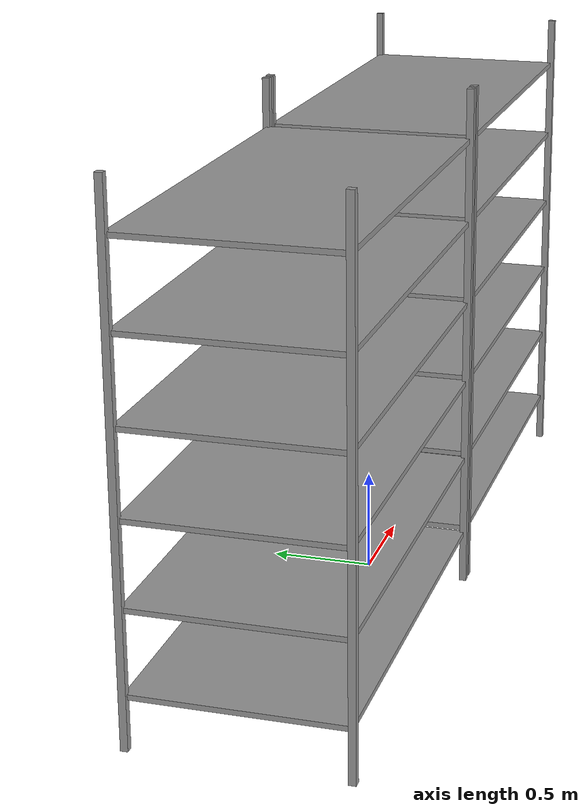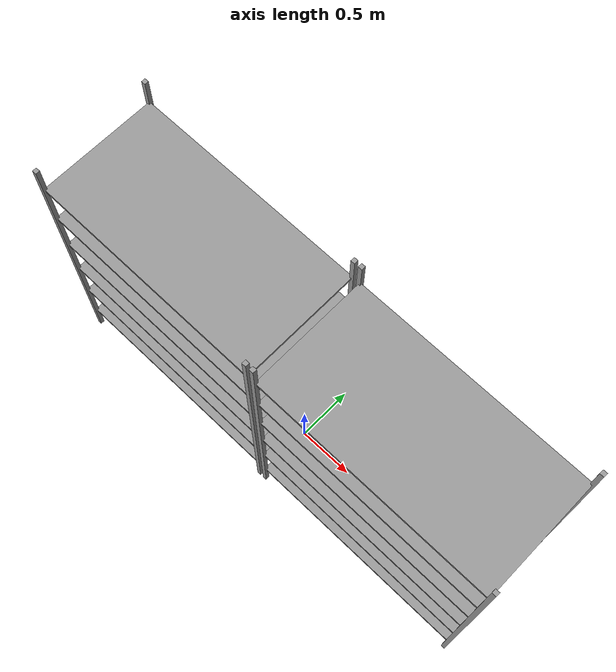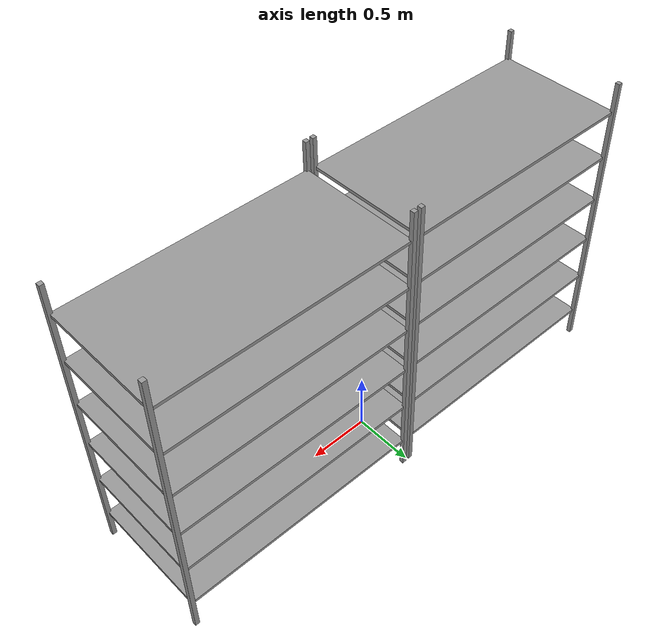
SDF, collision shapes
<sdf version="1.6">
 <model name="shelves">
  <model name="shelf">
   <link name="link_1">
    <inertial>
     <mass>1</mass>
     <inertia>
      <ixx>0.166667</ixx>
      <ixy>0</ixy>
      <ixz>0</ixz>
      <iyy>0.166667</iyy>
      <iyz>0</iyz>
      <izz>0.166667</izz>
     </inertia>
    </inertial>
    <visual name="ModelPreview_2::link_1::visual_6">
     <pose>1 0.5 0 0 -0 0</pose>
     <geometry><mesh><uri>model://shelf/model/2-5mDirek.stl</uri><scale>0.001 0.001 0.001</scale></mesh></geometry>
     <material>
      <lighting>1</lighting>
      <script><uri>file://media/materials/scripts/gazebo.material</uri><name>Gazebo/Grey</name></script>
      <shader type="vertex"><normal_map>__default__</normal_map></shader>
      <ambient>0.3 0.3 0.3 1</ambient>
      <diffuse>0.7 0.7 0.7 1</diffuse>
      <specular>0.01 0.01 0.01 1</specular>
      <emissive>0 0 0 1</emissive>
     </material>
    </visual>
    <visual name="ModelPreview_2::link_1::visual_7">
     <pose>-1 0.5 0 0 -0 0</pose>
     <geometry><mesh><uri>model://shelf/model/2-5mDirek.stl</uri><scale>0.001 0.001 0.001</scale></mesh></geometry>
     <material>
      <lighting>1</lighting>
      <script><uri>file://media/materials/scripts/gazebo.material</uri><name>Gazebo/Grey</name></script>
      <shader type="vertex"><normal_map>__default__</normal_map></shader>
      <ambient>0.3 0.3 0.3 1</ambient>
      <diffuse>0.7 0.7 0.7 1</diffuse>
      <specular>0.01 0.01 0.01 1</specular>
      <emissive>0 0 0 1</emissive>
     </material>
    </visual>
    <visual name="ModelPreview_2::link_1::visual_4">
     <pose>0 0 1.85 0 -0 0</pose>
     <geometry><box><size>2 1 0.025</size></box></geometry>
     <material>
      <lighting>1</lighting>
      <script><uri>file://media/materials/scripts/gazebo.material</uri><name>Gazebo/WoodFloor</name></script>
      <shader type="vertex"><normal_map>__default__</normal_map></shader>
      <ambient>0.3 0.3 0.3 1</ambient>
      <diffuse>0.7 0.7 0.7 1</diffuse>
      <specular>0.01 0.01 0.01 1</specular>
      <emissive>0 0 0 1</emissive>
     </material>
    </visual>
    <visual name="ModelPreview_2::link_1::visual_5">
     <pose>0 0 2.25 0 -0 0</pose>
     <geometry><box><size>2 1 0.025</size></box></geometry>
     <material>
      <lighting>1</lighting>
      <script><uri>file://media/materials/scripts/gazebo.material</uri><name>Gazebo/WoodFloor</name></script>
      <shader type="vertex"><normal_map>__default__</normal_map></shader>
      <ambient>0.3 0.3 0.3 1</ambient>
      <diffuse>0.7 0.7 0.7 1</diffuse>
      <specular>0.01 0.01 0.01 1</specular>
      <emissive>0 0 0 1</emissive>
     </material>
    </visual>
    <visual name="ModelPreview_2::link_1::visual_3">
     <pose>0 0 1.45 0 -0 0</pose>
     <geometry><box><size>2 1 0.025</size></box></geometry>
     <material>
      <lighting>1</lighting>
      <script><uri>file://media/materials/scripts/gazebo.material</uri><name>Gazebo/WoodFloor</name></script>
      <shader type="vertex"><normal_map>__default__</normal_map></shader>
      <ambient>0.3 0.3 0.3 1</ambient>
      <diffuse>0.7 0.7 0.7 1</diffuse>
      <specular>0.01 0.01 0.01 1</specular>
      <emissive>0 0 0 1</emissive>
     </material>
    </visual>
    <visual name="ModelPreview_2::link_1::visual_1">
     <pose>0 0 0.65 0 -0 0</pose>
     <geometry><box><size>2 1 0.025</size></box></geometry>
     <material>
      <lighting>1</lighting>
      <script><uri>file://media/materials/scripts/gazebo.material</uri><name>Gazebo/WoodFloor</name></script>
      <shader type="vertex"><normal_map>__default__</normal_map></shader>
      <ambient>0.3 0.3 0.3 1</ambient>
      <diffuse>0.7 0.7 0.7 1</diffuse>
      <specular>0.01 0.01 0.01 1</specular>
      <emissive>0 0 0 1</emissive>
     </material>
    </visual>
    <visual name="visual">
     <pose>0 0 0.25 0 -0 0</pose>
     <geometry><box><size>2 1 0.025</size></box></geometry>
     <material>
      <lighting>1</lighting>
      <script><uri>file://media/materials/scripts/gazebo.material</uri><name>Gazebo/WoodFloor</name></script>
      <shader type="vertex"><normal_map>__default__</normal_map></shader>
      <ambient>0.3 0.3 0.3 1</ambient>
      <diffuse>0.7 0.7 0.7 1</diffuse>
      <specular>0.01 0.01 0.01 1</specular>
      <emissive>0 0 0 1</emissive>
     </material>
    </visual>
    <visual name="ModelPreview_2::link_1::visual_2">
     <pose>0 0 1.05 0 -0 0</pose>
     <geometry><box><size>2 1 0.025</size></box></geometry>
     <material>
      <lighting>1</lighting>
      <script><uri>file://media/materials/scripts/gazebo.material</uri><name>Gazebo/WoodFloor</name></script>
      <shader type="vertex"><normal_map>__default__</normal_map></shader>
      <ambient>0.3 0.3 0.3 1</ambient>
      <diffuse>0.7 0.7 0.7 1</diffuse>
      <specular>0.01 0.01 0.01 1</specular>
      <emissive>0 0 0 1</emissive>
     </material>
    </visual>
    <visual name="ModelPreview_2::link_1::visual_8">
     <pose>1 -0.5 0 0 -0 0</pose>
     <geometry><mesh><uri>model://shelf/model/2-5mDirek.stl</uri><scale>0.001 0.001 0.001</scale></mesh></geometry>
     <material>
      <lighting>1</lighting>
      <script><uri>file://media/materials/scripts/gazebo.material</uri><name>Gazebo/Grey</name></script>
      <shader type="vertex"><normal_map>__default__</normal_map></shader>
      <ambient>0.3 0.3 0.3 1</ambient>
      <diffuse>0.7 0.7 0.7 1</diffuse>
      <specular>0.01 0.01 0.01 1</specular>
      <emissive>0 0 0 1</emissive>
     </material>
    </visual>
    <visual name="ModelPreview_2::link_1::visual_9">
     <pose>-1 -0.5 0 0 -0 0</pose>
     <geometry><mesh><uri>model://shelf/model/2-5mDirek.stl</uri><scale>0.001 0.001 0.001</scale></mesh></geometry>
     <material>
      <lighting>1</lighting>
      <script><uri>file://media/materials/scripts/gazebo.material</uri><name>Gazebo/Grey</name></script>
      <shader type="vertex"><normal_map>__default__</normal_map></shader>
      <ambient>0.3 0.3 0.3 1</ambient>
      <diffuse>0.7 0.7 0.7 1</diffuse>
      <specular>0.01 0.01 0.01 1</specular>
      <emissive>0 0 0 1</emissive>
     </material>
    </visual>
    <collision name="collision_7">
     <pose>1 -0.5 1.25 0 -0 0</pose>
     <geometry><box><size>0.035 0.035 2.5</size></box></geometry>
     <surface>
      <friction>
       <ode><mu>1</mu><mu2>1</mu2><fdir1>0 0 0</fdir1><slip1>0</slip1><slip2>0</slip2></ode>
       <torsional>
        <coefficient>1</coefficient>
        <patch_radius>0</patch_radius>
        <surface_radius>0</surface_radius>
        <use_patch_radius>1</use_patch_radius>
        <ode><slip>0</slip></ode>
       </torsional>
      </friction>
      <bounce><restitution_coefficient>0</restitution_coefficient><threshold>1e+06</threshold></bounce>
      <contact>
       <collide_without_contact>0</collide_without_contact>
       <collide_without_contact_bitmask>1</collide_without_contact_bitmask>
       <collide_bitmask>1</collide_bitmask>
       <ode>
        <soft_cfm>0</soft_cfm>
        <soft_erp>0.2</soft_erp>
        <kp>1e+13</kp>
        <kd>1</kd>
        <max_vel>0.01</max_vel>
        <min_depth>0</min_depth>
       </ode>
       <bullet>
        <split_impulse>1</split_impulse>
        <split_impulse_penetration_threshold>-0.01</split_impulse_penetration_threshold>
        <soft_cfm>0</soft_cfm>
        <soft_erp>0.2</soft_erp>
        <kp>1e+13</kp>
        <kd>1</kd>
       </bullet>
      </contact>
     </surface>
    </collision>
    <collision name="collision_6">
     <pose>1 0.5 1.25 0 -0 0</pose>
     <geometry><box><size>0.035 0.035 2.5</size></box></geometry>
     <surface>
      <friction>
       <ode><mu>1</mu><mu2>1</mu2><fdir1>0 0 0</fdir1><slip1>0</slip1><slip2>0</slip2></ode>
       <torsional>
        <coefficient>1</coefficient>
        <patch_radius>0</patch_radius>
        <surface_radius>0</surface_radius>
        <use_patch_radius>1</use_patch_radius>
        <ode><slip>0</slip></ode>
       </torsional>
      </friction>
      <bounce><restitution_coefficient>0</restitution_coefficient><threshold>1e+06</threshold></bounce>
      <contact>
       <collide_without_contact>0</collide_without_contact>
       <collide_without_contact_bitmask>1</collide_without_contact_bitmask>
       <collide_bitmask>1</collide_bitmask>
       <ode>
        <soft_cfm>0</soft_cfm>
        <soft_erp>0.2</soft_erp>
        <kp>1e+13</kp>
        <kd>1</kd>
        <max_vel>0.01</max_vel>
        <min_depth>0</min_depth>
       </ode>
       <bullet>
        <split_impulse>1</split_impulse>
        <split_impulse_penetration_threshold>-0.01</split_impulse_penetration_threshold>
        <soft_cfm>0</soft_cfm>
        <soft_erp>0.2</soft_erp>
        <kp>1e+13</kp>
        <kd>1</kd>
       </bullet>
      </contact>
     </surface>
    </collision>
    <collision name="collision_2">
     <pose>0 0 1.05 0 -0 0</pose>
     <geometry><box><size>2 1 0.025</size></box></geometry>
     <surface>
      <friction>
       <ode><mu>1</mu><mu2>1</mu2><fdir1>0 0 0</fdir1><slip1>0</slip1><slip2>0</slip2></ode>
       <torsional>
        <coefficient>1</coefficient>
        <patch_radius>0</patch_radius>
        <surface_radius>0</surface_radius>
        <use_patch_radius>1</use_patch_radius>
        <ode><slip>0</slip></ode>
       </torsional>
      </friction>
      <bounce><restitution_coefficient>0</restitution_coefficient><threshold>1e+06</threshold></bounce>
      <contact>
       <collide_without_contact>0</collide_without_contact>
       <collide_without_contact_bitmask>1</collide_without_contact_bitmask>
       <collide_bitmask>1</collide_bitmask>
       <ode>
        <soft_cfm>0</soft_cfm>
        <soft_erp>0.2</soft_erp>
        <kp>1e+13</kp>
        <kd>1</kd>
        <max_vel>0.01</max_vel>
        <min_depth>0</min_depth>
       </ode>
       <bullet>
        <split_impulse>1</split_impulse>
        <split_impulse_penetration_threshold>-0.01</split_impulse_penetration_threshold>
        <soft_cfm>0</soft_cfm>
        <soft_erp>0.2</soft_erp>
        <kp>1e+13</kp>
        <kd>1</kd>
       </bullet>
      </contact>
     </surface>
    </collision>
    <collision name="collision_8">
     <pose>-1 0.5 1.25 0 -0 0</pose>
     <geometry><box><size>0.035 0.035 2.5</size></box></geometry>
     <surface>
      <friction>
       <ode><mu>1</mu><mu2>1</mu2><fdir1>0 0 0</fdir1><slip1>0</slip1><slip2>0</slip2></ode>
       <torsional>
        <coefficient>1</coefficient>
        <patch_radius>0</patch_radius>
        <surface_radius>0</surface_radius>
        <use_patch_radius>1</use_patch_radius>
        <ode><slip>0</slip></ode>
       </torsional>
      </friction>
      <bounce><restitution_coefficient>0</restitution_coefficient><threshold>1e+06</threshold></bounce>
      <contact>
       <collide_without_contact>0</collide_without_contact>
       <collide_without_contact_bitmask>1</collide_without_contact_bitmask>
       <collide_bitmask>1</collide_bitmask>
       <ode>
        <soft_cfm>0</soft_cfm>
        <soft_erp>0.2</soft_erp>
        <kp>1e+13</kp>
        <kd>1</kd>
        <max_vel>0.01</max_vel>
        <min_depth>0</min_depth>
       </ode>
       <bullet>
        <split_impulse>1</split_impulse>
        <split_impulse_penetration_threshold>-0.01</split_impulse_penetration_threshold>
        <soft_cfm>0</soft_cfm>
        <soft_erp>0.2</soft_erp>
        <kp>1e+13</kp>
        <kd>1</kd>
       </bullet>
      </contact>
     </surface>
    </collision>
    <collision name="collision_4">
     <pose>0 0 1.85 0 -0 0</pose>
     <geometry><box><size>2 1 0.025</size></box></geometry>
     <surface>
      <friction>
       <ode><mu>1</mu><mu2>1</mu2><fdir1>0 0 0</fdir1><slip1>0</slip1><slip2>0</slip2></ode>
       <torsional>
        <coefficient>1</coefficient>
        <patch_radius>0</patch_radius>
        <surface_radius>0</surface_radius>
        <use_patch_radius>1</use_patch_radius>
        <ode><slip>0</slip></ode>
       </torsional>
      </friction>
      <bounce><restitution_coefficient>0</restitution_coefficient><threshold>1e+06</threshold></bounce>
      <contact>
       <collide_without_contact>0</collide_without_contact>
       <collide_without_contact_bitmask>1</collide_without_contact_bitmask>
       <collide_bitmask>1</collide_bitmask>
       <ode>
        <soft_cfm>0</soft_cfm>
        <soft_erp>0.2</soft_erp>
        <kp>1e+13</kp>
        <kd>1</kd>
        <max_vel>0.01</max_vel>
        <min_depth>0</min_depth>
       </ode>
       <bullet>
        <split_impulse>1</split_impulse>
        <split_impulse_penetration_threshold>-0.01</split_impulse_penetration_threshold>
        <soft_cfm>0</soft_cfm>
        <soft_erp>0.2</soft_erp>
        <kp>1e+13</kp>
        <kd>1</kd>
       </bullet>
      </contact>
     </surface>
    </collision>
    <collision name="collision_1">
     <pose>0 0 0.65 0 -0 0</pose>
     <geometry><box><size>2 1 0.025</size></box></geometry>
     <surface>
      <friction>
       <ode><mu>1</mu><mu2>1</mu2><fdir1>0 0 0</fdir1><slip1>0</slip1><slip2>0</slip2></ode>
       <torsional>
        <coefficient>1</coefficient>
        <patch_radius>0</patch_radius>
        <surface_radius>0</surface_radius>
        <use_patch_radius>1</use_patch_radius>
        <ode><slip>0</slip></ode>
       </torsional>
      </friction>
      <bounce><restitution_coefficient>0</restitution_coefficient><threshold>1e+06</threshold></bounce>
      <contact>
       <collide_without_contact>0</collide_without_contact>
       <collide_without_contact_bitmask>1</collide_without_contact_bitmask>
       <collide_bitmask>1</collide_bitmask>
       <ode>
        <soft_cfm>0</soft_cfm>
        <soft_erp>0.2</soft_erp>
        <kp>1e+13</kp>
        <kd>1</kd>
        <max_vel>0.01</max_vel>
        <min_depth>0</min_depth>
       </ode>
       <bullet>
        <split_impulse>1</split_impulse>
        <split_impulse_penetration_threshold>-0.01</split_impulse_penetration_threshold>
        <soft_cfm>0</soft_cfm>
        <soft_erp>0.2</soft_erp>
        <kp>1e+13</kp>
        <kd>1</kd>
       </bullet>
      </contact>
     </surface>
    </collision>
    <collision name="collision_3">
     <pose>0 0 1.45 0 -0 0</pose>
     <geometry><box><size>2 1 0.025</size></box></geometry>
     <surface>
      <friction>
       <ode><mu>1</mu><mu2>1</mu2><fdir1>0 0 0</fdir1><slip1>0</slip1><slip2>0</slip2></ode>
       <torsional>
        <coefficient>1</coefficient>
        <patch_radius>0</patch_radius>
        <surface_radius>0</surface_radius>
        <use_patch_radius>1</use_patch_radius>
        <ode><slip>0</slip></ode>
       </torsional>
      </friction>
      <bounce><restitution_coefficient>0</restitution_coefficient><threshold>1e+06</threshold></bounce>
      <contact>
       <collide_without_contact>0</collide_without_contact>
       <collide_without_contact_bitmask>1</collide_without_contact_bitmask>
       <collide_bitmask>1</collide_bitmask>
       <ode>
        <soft_cfm>0</soft_cfm>
        <soft_erp>0.2</soft_erp>
        <kp>1e+13</kp>
        <kd>1</kd>
        <max_vel>0.01</max_vel>
        <min_depth>0</min_depth>
       </ode>
       <bullet>
        <split_impulse>1</split_impulse>
        <split_impulse_penetration_threshold>-0.01</split_impulse_penetration_threshold>
        <soft_cfm>0</soft_cfm>
        <soft_erp>0.2</soft_erp>
        <kp>1e+13</kp>
        <kd>1</kd>
       </bullet>
      </contact>
     </surface>
    </collision>
    <collision name="collision_5">
     <pose>0 0 2.25 0 -0 0</pose>
     <geometry><box><size>2 1 0.025</size></box></geometry>
     <surface>
      <friction>
       <ode><mu>1</mu><mu2>1</mu2><fdir1>0 0 0</fdir1><slip1>0</slip1><slip2>0</slip2></ode>
       <torsional>
        <coefficient>1</coefficient>
        <patch_radius>0</patch_radius>
        <surface_radius>0</surface_radius>
        <use_patch_radius>1</use_patch_radius>
        <ode><slip>0</slip></ode>
       </torsional>
      </friction>
      <bounce><restitution_coefficient>0</restitution_coefficient><threshold>1e+06</threshold></bounce>
      <contact>
       <collide_without_contact>0</collide_without_contact>
       <collide_without_contact_bitmask>1</collide_without_contact_bitmask>
       <collide_bitmask>1</collide_bitmask>
       <ode>
        <soft_cfm>0</soft_cfm>
        <soft_erp>0.2</soft_erp>
        <kp>1e+13</kp>
        <kd>1</kd>
        <max_vel>0.01</max_vel>
        <min_depth>0</min_depth>
       </ode>
       <bullet>
        <split_impulse>1</split_impulse>
        <split_impulse_penetration_threshold>-0.01</split_impulse_penetration_threshold>
        <soft_cfm>0</soft_cfm>
        <soft_erp>0.2</soft_erp>
        <kp>1e+13</kp>
        <kd>1</kd>
       </bullet>
      </contact>
     </surface>
    </collision>
    <collision name="collision">
     <pose>0 0 0.25 0 -0 0</pose>
     <geometry><box><size>2 1 0.025</size></box></geometry>
     <surface>
      <friction>
       <ode><mu>1</mu><mu2>1</mu2><fdir1>0 0 0</fdir1><slip1>0</slip1><slip2>0</slip2></ode>
       <torsional>
        <coefficient>1</coefficient>
        <patch_radius>0</patch_radius>
        <surface_radius>0</surface_radius>
        <use_patch_radius>1</use_patch_radius>
        <ode><slip>0</slip></ode>
       </torsional>
      </friction>
      <bounce><restitution_coefficient>0</restitution_coefficient><threshold>1e+06</threshold></bounce>
      <contact>
       <collide_without_contact>0</collide_without_contact>
       <collide_without_contact_bitmask>1</collide_without_contact_bitmask>
       <collide_bitmask>1</collide_bitmask>
       <ode>
        <soft_cfm>0</soft_cfm>
        <soft_erp>0.2</soft_erp>
        <kp>1e+13</kp>
        <kd>1</kd>
        <max_vel>0.01</max_vel>
        <min_depth>0</min_depth>
       </ode>
       <bullet>
        <split_impulse>1</split_impulse>
        <split_impulse_penetration_threshold>-0.01</split_impulse_penetration_threshold>
        <soft_cfm>0</soft_cfm>
        <soft_erp>0.2</soft_erp>
        <kp>1e+13</kp>
        <kd>1</kd>
       </bullet>
      </contact>
     </surface>
    </collision>
    <collision name="collision_9">
     <pose>-1 -0.5 1.25 0 -0 0</pose>
     <geometry><box><size>0.035 0.035 2.5</size></box></geometry>
     <surface>
      <friction>
       <ode><mu>1</mu><mu2>1</mu2><fdir1>0 0 0</fdir1><slip1>0</slip1><slip2>0</slip2></ode>
       <torsional>
        <coefficient>1</coefficient>
        <patch_radius>0</patch_radius>
        <surface_radius>0</surface_radius>
        <use_patch_radius>1</use_patch_radius>
        <ode><slip>0</slip></ode>
       </torsional>
      </friction>
      <bounce><restitution_coefficient>0</restitution_coefficient><threshold>1e+06</threshold></bounce>
      <contact>
       <collide_without_contact>0</collide_without_contact>
       <collide_without_contact_bitmask>1</collide_without_contact_bitmask>
       <collide_bitmask>1</collide_bitmask>
       <ode>
        <soft_cfm>0</soft_cfm>
        <soft_erp>0.2</soft_erp>
        <kp>1e+13</kp>
        <kd>1</kd>
        <max_vel>0.01</max_vel>
        <min_depth>0</min_depth>
       </ode>
       <bullet>
        <split_impulse>1</split_impulse>
        <split_impulse_penetration_threshold>-0.01</split_impulse_penetration_threshold>
        <soft_cfm>0</soft_cfm>
        <soft_erp>0.2</soft_erp>
        <kp>1e+13</kp>
        <kd>1</kd>
       </bullet>
      </contact>
     </surface>
    </collision>
   </link>
   <static>1</static>
   <pose>-1.03015 -0.001875 0 0 -0 0</pose>
  </model>
  <model name="shelf_3">
   <link name="link_1">
    <inertial>
     <mass>1</mass>
     <inertia>
      <ixx>0.166667</ixx>
      <ixy>0</ixy>
      <ixz>0</ixz>
      <iyy>0.166667</iyy>
      <iyz>0</iyz>
      <izz>0.166667</izz>
     </inertia>
    </inertial>
    <visual name="ModelPreview_2::link_1::visual_6">
     <pose>1 0.5 0 0 -0 0</pose>
     <geometry><mesh><uri>model://shelf/model/2-5mDirek.stl</uri><scale>0.001 0.001 0.001</scale></mesh></geometry>
     <material>
      <lighting>1</lighting>
      <script><uri>file://media/materials/scripts/gazebo.material</uri><name>Gazebo/Grey</name></script>
      <shader type="vertex"><normal_map>__default__</normal_map></shader>
      <ambient>0.3 0.3 0.3 1</ambient>
      <diffuse>0.7 0.7 0.7 1</diffuse>
      <specular>0.01 0.01 0.01 1</specular>
      <emissive>0 0 0 1</emissive>
     </material>
    </visual>
    <visual name="ModelPreview_2::link_1::visual_7">
     <pose>-1 0.5 0 0 -0 0</pose>
     <geometry><mesh><uri>model://shelf/model/2-5mDirek.stl</uri><scale>0.001 0.001 0.001</scale></mesh></geometry>
     <material>
      <lighting>1</lighting>
      <script><uri>file://media/materials/scripts/gazebo.material</uri><name>Gazebo/Grey</name></script>
      <shader type="vertex"><normal_map>__default__</normal_map></shader>
      <ambient>0.3 0.3 0.3 1</ambient>
      <diffuse>0.7 0.7 0.7 1</diffuse>
      <specular>0.01 0.01 0.01 1</specular>
      <emissive>0 0 0 1</emissive>
     </material>
    </visual>
    <visual name="ModelPreview_2::link_1::visual_4">
     <pose>0 0 1.85 0 -0 0</pose>
     <geometry><box><size>2 1 0.025</size></box></geometry>
     <material>
      <lighting>1</lighting>
      <script><uri>file://media/materials/scripts/gazebo.material</uri><name>Gazebo/WoodFloor</name></script>
      <shader type="vertex"><normal_map>__default__</normal_map></shader>
      <ambient>0.3 0.3 0.3 1</ambient>
      <diffuse>0.7 0.7 0.7 1</diffuse>
      <specular>0.01 0.01 0.01 1</specular>
      <emissive>0 0 0 1</emissive>
     </material>
    </visual>
    <visual name="ModelPreview_2::link_1::visual_5">
     <pose>0 0 2.25 0 -0 0</pose>
     <geometry><box><size>2 1 0.025</size></box></geometry>
     <material>
      <lighting>1</lighting>
      <script><uri>file://media/materials/scripts/gazebo.material</uri><name>Gazebo/WoodFloor</name></script>
      <shader type="vertex"><normal_map>__default__</normal_map></shader>
      <ambient>0.3 0.3 0.3 1</ambient>
      <diffuse>0.7 0.7 0.7 1</diffuse>
      <specular>0.01 0.01 0.01 1</specular>
      <emissive>0 0 0 1</emissive>
     </material>
    </visual>
    <visual name="ModelPreview_2::link_1::visual_3">
     <pose>0 0 1.45 0 -0 0</pose>
     <geometry><box><size>2 1 0.025</size></box></geometry>
     <material>
      <lighting>1</lighting>
      <script><uri>file://media/materials/scripts/gazebo.material</uri><name>Gazebo/WoodFloor</name></script>
      <shader type="vertex"><normal_map>__default__</normal_map></shader>
      <ambient>0.3 0.3 0.3 1</ambient>
      <diffuse>0.7 0.7 0.7 1</diffuse>
      <specular>0.01 0.01 0.01 1</specular>
      <emissive>0 0 0 1</emissive>
     </material>
    </visual>
    <visual name="ModelPreview_2::link_1::visual_1">
     <pose>0 0 0.65 0 -0 0</pose>
     <geometry><box><size>2 1 0.025</size></box></geometry>
     <material>
      <lighting>1</lighting>
      <script><uri>file://media/materials/scripts/gazebo.material</uri><name>Gazebo/WoodFloor</name></script>
      <shader type="vertex"><normal_map>__default__</normal_map></shader>
      <ambient>0.3 0.3 0.3 1</ambient>
      <diffuse>0.7 0.7 0.7 1</diffuse>
      <specular>0.01 0.01 0.01 1</specular>
      <emissive>0 0 0 1</emissive>
     </material>
    </visual>
    <visual name="visual">
     <pose>0 0 0.25 0 -0 0</pose>
     <geometry><box><size>2 1 0.025</size></box></geometry>
     <material>
      <lighting>1</lighting>
      <script><uri>file://media/materials/scripts/gazebo.material</uri><name>Gazebo/WoodFloor</name></script>
      <shader type="vertex"><normal_map>__default__</normal_map></shader>
      <ambient>0.3 0.3 0.3 1</ambient>
      <diffuse>0.7 0.7 0.7 1</diffuse>
      <specular>0.01 0.01 0.01 1</specular>
      <emissive>0 0 0 1</emissive>
     </material>
    </visual>
    <visual name="ModelPreview_2::link_1::visual_2">
     <pose>0 0 1.05 0 -0 0</pose>
     <geometry><box><size>2 1 0.025</size></box></geometry>
     <material>
      <lighting>1</lighting>
      <script><uri>file://media/materials/scripts/gazebo.material</uri><name>Gazebo/WoodFloor</name></script>
      <shader type="vertex"><normal_map>__default__</normal_map></shader>
      <ambient>0.3 0.3 0.3 1</ambient>
      <diffuse>0.7 0.7 0.7 1</diffuse>
      <specular>0.01 0.01 0.01 1</specular>
      <emissive>0 0 0 1</emissive>
     </material>
    </visual>
    <visual name="ModelPreview_2::link_1::visual_8">
     <pose>1 -0.5 0 0 -0 0</pose>
     <geometry><mesh><uri>model://shelf/model/2-5mDirek.stl</uri><scale>0.001 0.001 0.001</scale></mesh></geometry>
     <material>
      <lighting>1</lighting>
      <script><uri>file://media/materials/scripts/gazebo.material</uri><name>Gazebo/Grey</name></script>
      <shader type="vertex"><normal_map>__default__</normal_map></shader>
      <ambient>0.3 0.3 0.3 1</ambient>
      <diffuse>0.7 0.7 0.7 1</diffuse>
      <specular>0.01 0.01 0.01 1</specular>
      <emissive>0 0 0 1</emissive>
     </material>
    </visual>
    <visual name="ModelPreview_2::link_1::visual_9">
     <pose>-1 -0.5 0 0 -0 0</pose>
     <geometry><mesh><uri>model://shelf/model/2-5mDirek.stl</uri><scale>0.001 0.001 0.001</scale></mesh></geometry>
     <material>
      <lighting>1</lighting>
      <script><uri>file://media/materials/scripts/gazebo.material</uri><name>Gazebo/Grey</name></script>
      <shader type="vertex"><normal_map>__default__</normal_map></shader>
      <ambient>0.3 0.3 0.3 1</ambient>
      <diffuse>0.7 0.7 0.7 1</diffuse>
      <specular>0.01 0.01 0.01 1</specular>
      <emissive>0 0 0 1</emissive>
     </material>
    </visual>
    <collision name="collision_7">
     <pose>1 -0.5 1.25 0 -0 0</pose>
     <geometry><box><size>0.035 0.035 2.5</size></box></geometry>
     <surface>
      <friction>
       <ode><mu>1</mu><mu2>1</mu2><fdir1>0 0 0</fdir1><slip1>0</slip1><slip2>0</slip2></ode>
       <torsional>
        <coefficient>1</coefficient>
        <patch_radius>0</patch_radius>
        <surface_radius>0</surface_radius>
        <use_patch_radius>1</use_patch_radius>
        <ode><slip>0</slip></ode>
       </torsional>
      </friction>
      <bounce><restitution_coefficient>0</restitution_coefficient><threshold>1e+06</threshold></bounce>
      <contact>
       <collide_without_contact>0</collide_without_contact>
       <collide_without_contact_bitmask>1</collide_without_contact_bitmask>
       <collide_bitmask>1</collide_bitmask>
       <ode>
        <soft_cfm>0</soft_cfm>
        <soft_erp>0.2</soft_erp>
        <kp>1e+13</kp>
        <kd>1</kd>
        <max_vel>0.01</max_vel>
        <min_depth>0</min_depth>
       </ode>
       <bullet>
        <split_impulse>1</split_impulse>
        <split_impulse_penetration_threshold>-0.01</split_impulse_penetration_threshold>
        <soft_cfm>0</soft_cfm>
        <soft_erp>0.2</soft_erp>
        <kp>1e+13</kp>
        <kd>1</kd>
       </bullet>
      </contact>
     </surface>
    </collision>
    <collision name="collision_6">
     <pose>1 0.5 1.25 0 -0 0</pose>
     <geometry><box><size>0.035 0.035 2.5</size></box></geometry>
     <surface>
      <friction>
       <ode><mu>1</mu><mu2>1</mu2><fdir1>0 0 0</fdir1><slip1>0</slip1><slip2>0</slip2></ode>
       <torsional>
        <coefficient>1</coefficient>
        <patch_radius>0</patch_radius>
        <surface_radius>0</surface_radius>
        <use_patch_radius>1</use_patch_radius>
        <ode><slip>0</slip></ode>
       </torsional>
      </friction>
      <bounce><restitution_coefficient>0</restitution_coefficient><threshold>1e+06</threshold></bounce>
      <contact>
       <collide_without_contact>0</collide_without_contact>
       <collide_without_contact_bitmask>1</collide_without_contact_bitmask>
       <collide_bitmask>1</collide_bitmask>
       <ode>
        <soft_cfm>0</soft_cfm>
        <soft_erp>0.2</soft_erp>
        <kp>1e+13</kp>
        <kd>1</kd>
        <max_vel>0.01</max_vel>
        <min_depth>0</min_depth>
       </ode>
       <bullet>
        <split_impulse>1</split_impulse>
        <split_impulse_penetration_threshold>-0.01</split_impulse_penetration_threshold>
        <soft_cfm>0</soft_cfm>
        <soft_erp>0.2</soft_erp>
        <kp>1e+13</kp>
        <kd>1</kd>
       </bullet>
      </contact>
     </surface>
    </collision>
    <collision name="collision_2">
     <pose>0 0 1.05 0 -0 0</pose>
     <geometry><box><size>2 1 0.025</size></box></geometry>
     <surface>
      <friction>
       <ode><mu>1</mu><mu2>1</mu2><fdir1>0 0 0</fdir1><slip1>0</slip1><slip2>0</slip2></ode>
       <torsional>
        <coefficient>1</coefficient>
        <patch_radius>0</patch_radius>
        <surface_radius>0</surface_radius>
        <use_patch_radius>1</use_patch_radius>
        <ode><slip>0</slip></ode>
       </torsional>
      </friction>
      <bounce><restitution_coefficient>0</restitution_coefficient><threshold>1e+06</threshold></bounce>
      <contact>
       <collide_without_contact>0</collide_without_contact>
       <collide_without_contact_bitmask>1</collide_without_contact_bitmask>
       <collide_bitmask>1</collide_bitmask>
       <ode>
        <soft_cfm>0</soft_cfm>
        <soft_erp>0.2</soft_erp>
        <kp>1e+13</kp>
        <kd>1</kd>
        <max_vel>0.01</max_vel>
        <min_depth>0</min_depth>
       </ode>
       <bullet>
        <split_impulse>1</split_impulse>
        <split_impulse_penetration_threshold>-0.01</split_impulse_penetration_threshold>
        <soft_cfm>0</soft_cfm>
        <soft_erp>0.2</soft_erp>
        <kp>1e+13</kp>
        <kd>1</kd>
       </bullet>
      </contact>
     </surface>
    </collision>
    <collision name="collision_8">
     <pose>-1 0.5 1.25 0 -0 0</pose>
     <geometry><box><size>0.035 0.035 2.5</size></box></geometry>
     <surface>
      <friction>
       <ode><mu>1</mu><mu2>1</mu2><fdir1>0 0 0</fdir1><slip1>0</slip1><slip2>0</slip2></ode>
       <torsional>
        <coefficient>1</coefficient>
        <patch_radius>0</patch_radius>
        <surface_radius>0</surface_radius>
        <use_patch_radius>1</use_patch_radius>
        <ode><slip>0</slip></ode>
       </torsional>
      </friction>
      <bounce><restitution_coefficient>0</restitution_coefficient><threshold>1e+06</threshold></bounce>
      <contact>
       <collide_without_contact>0</collide_without_contact>
       <collide_without_contact_bitmask>1</collide_without_contact_bitmask>
       <collide_bitmask>1</collide_bitmask>
       <ode>
        <soft_cfm>0</soft_cfm>
        <soft_erp>0.2</soft_erp>
        <kp>1e+13</kp>
        <kd>1</kd>
        <max_vel>0.01</max_vel>
        <min_depth>0</min_depth>
       </ode>
       <bullet>
        <split_impulse>1</split_impulse>
        <split_impulse_penetration_threshold>-0.01</split_impulse_penetration_threshold>
        <soft_cfm>0</soft_cfm>
        <soft_erp>0.2</soft_erp>
        <kp>1e+13</kp>
        <kd>1</kd>
       </bullet>
      </contact>
     </surface>
    </collision>
    <collision name="collision_4">
     <pose>0 0 1.85 0 -0 0</pose>
     <geometry><box><size>2 1 0.025</size></box></geometry>
     <surface>
      <friction>
       <ode><mu>1</mu><mu2>1</mu2><fdir1>0 0 0</fdir1><slip1>0</slip1><slip2>0</slip2></ode>
       <torsional>
        <coefficient>1</coefficient>
        <patch_radius>0</patch_radius>
        <surface_radius>0</surface_radius>
        <use_patch_radius>1</use_patch_radius>
        <ode><slip>0</slip></ode>
       </torsional>
      </friction>
      <bounce><restitution_coefficient>0</restitution_coefficient><threshold>1e+06</threshold></bounce>
      <contact>
       <collide_without_contact>0</collide_without_contact>
       <collide_without_contact_bitmask>1</collide_without_contact_bitmask>
       <collide_bitmask>1</collide_bitmask>
       <ode>
        <soft_cfm>0</soft_cfm>
        <soft_erp>0.2</soft_erp>
        <kp>1e+13</kp>
        <kd>1</kd>
        <max_vel>0.01</max_vel>
        <min_depth>0</min_depth>
       </ode>
       <bullet>
        <split_impulse>1</split_impulse>
        <split_impulse_penetration_threshold>-0.01</split_impulse_penetration_threshold>
        <soft_cfm>0</soft_cfm>
        <soft_erp>0.2</soft_erp>
        <kp>1e+13</kp>
        <kd>1</kd>
       </bullet>
      </contact>
     </surface>
    </collision>
    <collision name="collision_1">
     <pose>0 0 0.65 0 -0 0</pose>
     <geometry><box><size>2 1 0.025</size></box></geometry>
     <surface>
      <friction>
       <ode><mu>1</mu><mu2>1</mu2><fdir1>0 0 0</fdir1><slip1>0</slip1><slip2>0</slip2></ode>
       <torsional>
        <coefficient>1</coefficient>
        <patch_radius>0</patch_radius>
        <surface_radius>0</surface_radius>
        <use_patch_radius>1</use_patch_radius>
        <ode><slip>0</slip></ode>
       </torsional>
      </friction>
      <bounce><restitution_coefficient>0</restitution_coefficient><threshold>1e+06</threshold></bounce>
      <contact>
       <collide_without_contact>0</collide_without_contact>
       <collide_without_contact_bitmask>1</collide_without_contact_bitmask>
       <collide_bitmask>1</collide_bitmask>
       <ode>
        <soft_cfm>0</soft_cfm>
        <soft_erp>0.2</soft_erp>
        <kp>1e+13</kp>
        <kd>1</kd>
        <max_vel>0.01</max_vel>
        <min_depth>0</min_depth>
       </ode>
       <bullet>
        <split_impulse>1</split_impulse>
        <split_impulse_penetration_threshold>-0.01</split_impulse_penetration_threshold>
        <soft_cfm>0</soft_cfm>
        <soft_erp>0.2</soft_erp>
        <kp>1e+13</kp>
        <kd>1</kd>
       </bullet>
      </contact>
     </surface>
    </collision>
    <collision name="collision_3">
     <pose>0 0 1.45 0 -0 0</pose>
     <geometry><box><size>2 1 0.025</size></box></geometry>
     <surface>
      <friction>
       <ode><mu>1</mu><mu2>1</mu2><fdir1>0 0 0</fdir1><slip1>0</slip1><slip2>0</slip2></ode>
       <torsional>
        <coefficient>1</coefficient>
        <patch_radius>0</patch_radius>
        <surface_radius>0</surface_radius>
        <use_patch_radius>1</use_patch_radius>
        <ode><slip>0</slip></ode>
       </torsional>
      </friction>
      <bounce><restitution_coefficient>0</restitution_coefficient><threshold>1e+06</threshold></bounce>
      <contact>
       <collide_without_contact>0</collide_without_contact>
       <collide_without_contact_bitmask>1</collide_without_contact_bitmask>
       <collide_bitmask>1</collide_bitmask>
       <ode>
        <soft_cfm>0</soft_cfm>
        <soft_erp>0.2</soft_erp>
        <kp>1e+13</kp>
        <kd>1</kd>
        <max_vel>0.01</max_vel>
        <min_depth>0</min_depth>
       </ode>
       <bullet>
        <split_impulse>1</split_impulse>
        <split_impulse_penetration_threshold>-0.01</split_impulse_penetration_threshold>
        <soft_cfm>0</soft_cfm>
        <soft_erp>0.2</soft_erp>
        <kp>1e+13</kp>
        <kd>1</kd>
       </bullet>
      </contact>
     </surface>
    </collision>
    <collision name="collision_5">
     <pose>0 0 2.25 0 -0 0</pose>
     <geometry><box><size>2 1 0.025</size></box></geometry>
     <surface>
      <friction>
       <ode><mu>1</mu><mu2>1</mu2><fdir1>0 0 0</fdir1><slip1>0</slip1><slip2>0</slip2></ode>
       <torsional>
        <coefficient>1</coefficient>
        <patch_radius>0</patch_radius>
        <surface_radius>0</surface_radius>
        <use_patch_radius>1</use_patch_radius>
        <ode><slip>0</slip></ode>
       </torsional>
      </friction>
      <bounce><restitution_coefficient>0</restitution_coefficient><threshold>1e+06</threshold></bounce>
      <contact>
       <collide_without_contact>0</collide_without_contact>
       <collide_without_contact_bitmask>1</collide_without_contact_bitmask>
       <collide_bitmask>1</collide_bitmask>
       <ode>
        <soft_cfm>0</soft_cfm>
        <soft_erp>0.2</soft_erp>
        <kp>1e+13</kp>
        <kd>1</kd>
        <max_vel>0.01</max_vel>
        <min_depth>0</min_depth>
       </ode>
       <bullet>
        <split_impulse>1</split_impulse>
        <split_impulse_penetration_threshold>-0.01</split_impulse_penetration_threshold>
        <soft_cfm>0</soft_cfm>
        <soft_erp>0.2</soft_erp>
        <kp>1e+13</kp>
        <kd>1</kd>
       </bullet>
      </contact>
     </surface>
    </collision>
    <collision name="collision">
     <pose>0 0 0.25 0 -0 0</pose>
     <geometry><box><size>2 1 0.025</size></box></geometry>
     <surface>
      <friction>
       <ode><mu>1</mu><mu2>1</mu2><fdir1>0 0 0</fdir1><slip1>0</slip1><slip2>0</slip2></ode>
       <torsional>
        <coefficient>1</coefficient>
        <patch_radius>0</patch_radius>
        <surface_radius>0</surface_radius>
        <use_patch_radius>1</use_patch_radius>
        <ode><slip>0</slip></ode>
       </torsional>
      </friction>
      <bounce><restitution_coefficient>0</restitution_coefficient><threshold>1e+06</threshold></bounce>
      <contact>
       <collide_without_contact>0</collide_without_contact>
       <collide_without_contact_bitmask>1</collide_without_contact_bitmask>
       <collide_bitmask>1</collide_bitmask>
       <ode>
        <soft_cfm>0</soft_cfm>
        <soft_erp>0.2</soft_erp>
        <kp>1e+13</kp>
        <kd>1</kd>
        <max_vel>0.01</max_vel>
        <min_depth>0</min_depth>
       </ode>
       <bullet>
        <split_impulse>1</split_impulse>
        <split_impulse_penetration_threshold>-0.01</split_impulse_penetration_threshold>
        <soft_cfm>0</soft_cfm>
        <soft_erp>0.2</soft_erp>
        <kp>1e+13</kp>
        <kd>1</kd>
       </bullet>
      </contact>
     </surface>
    </collision>
    <collision name="collision_9">
     <pose>-1 -0.5 1.25 0 -0 0</pose>
     <geometry><box><size>0.035 0.035 2.5</size></box></geometry>
     <surface>
      <friction>
       <ode><mu>1</mu><mu2>1</mu2><fdir1>0 0 0</fdir1><slip1>0</slip1><slip2>0</slip2></ode>
       <torsional>
        <coefficient>1</coefficient>
        <patch_radius>0</patch_radius>
        <surface_radius>0</surface_radius>
        <use_patch_radius>1</use_patch_radius>
        <ode><slip>0</slip></ode>
       </torsional>
      </friction>
      <bounce><restitution_coefficient>0</restitution_coefficient><threshold>1e+06</threshold></bounce>
      <contact>
       <collide_without_contact>0</collide_without_contact>
       <collide_without_contact_bitmask>1</collide_without_contact_bitmask>
       <collide_bitmask>1</collide_bitmask>
       <ode>
        <soft_cfm>0</soft_cfm>
        <soft_erp>0.2</soft_erp>
        <kp>1e+13</kp>
        <kd>1</kd>
        <max_vel>0.01</max_vel>
        <min_depth>0</min_depth>
       </ode>
       <bullet>
        <split_impulse>1</split_impulse>
        <split_impulse_penetration_threshold>-0.01</split_impulse_penetration_threshold>
        <soft_cfm>0</soft_cfm>
        <soft_erp>0.2</soft_erp>
        <kp>1e+13</kp>
        <kd>1</kd>
       </bullet>
      </contact>
     </surface>
    </collision>
   </link>
   <static>1</static>
   <pose>1.03411 -0.000474 0 0 -0 0</pose>
  </model>
  <static>1</static>
 </model>
</sdf>
